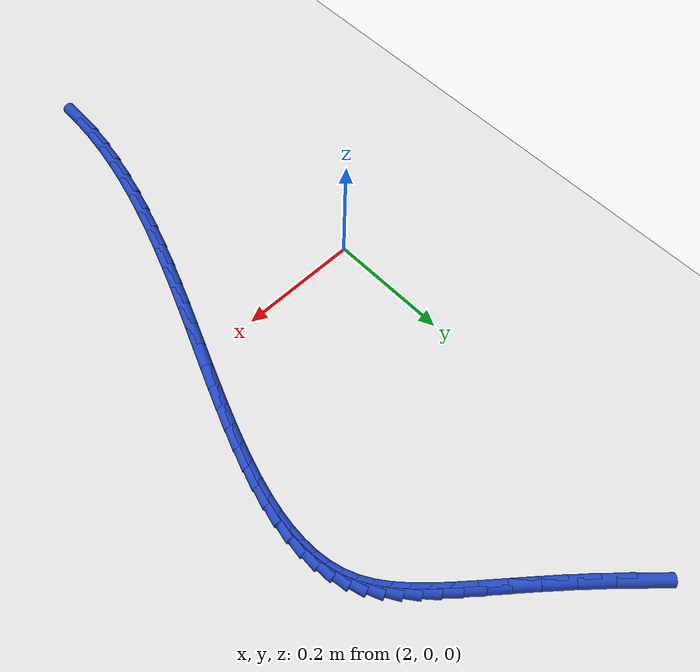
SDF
<sdf version="1.6">
 <world name="default">
  <model name="ground_plane">
   <static>1</static>
   <link name="link">
    <collision name="collision">
     <geometry><plane><normal>0 0 1</normal><size>100 100</size></plane></geometry>
     <surface><friction><ode><mu>100</mu><mu2>50</mu2></ode></friction></surface>
    </collision>
    <visual name="visual">
     <cast_shadows>0</cast_shadows>
     <geometry><plane><normal>0 0 1</normal><size>100 100</size></plane></geometry>
     <material>
      <script><uri>file://media/materials/scripts/gazebo.material</uri><name>Gazebo/WhiteGlow</name></script>
     </material>
    </visual>
   </link>
  </model>
  <model name="line">
   <link name="link_103">
    <pose>2.0911944101590705 0.6627033750504607 0.01 0 1.57 -0.7475670347152038</pose>
    <collision name="collision">
     <geometry><cylinder><radius>0.01</radius><length>0.08</length></cylinder></geometry>
    </collision>
    <visual name="visual">
     <material>
      <script><name>Gazebo/Blue</name><uri>file://media/materials/scripts/gazebo.material</uri></script>
     </material>
     <geometry><cylinder><radius>0.01</radius><length>0.08</length></cylinder></geometry>
    </visual>
   </link>
   <link name="link_104">
    <pose>2.1288737600473726 0.6277722717761682 0.01 0 1.57 -0.7252791392385805</pose>
    <collision name="collision">
     <geometry><cylinder><radius>0.01</radius><length>0.08</length></cylinder></geometry>
    </collision>
    <visual name="visual">
     <material>
      <script><name>Gazebo/Blue</name><uri>file://media/materials/scripts/gazebo.material</uri></script>
     </material>
     <geometry><cylinder><radius>0.01</radius><length>0.08</length></cylinder></geometry>
    </visual>
   </link>
   <link name="link_105">
    <pose>2.164173301611967 0.5964809387272672 0.01 0 1.57 -0.7075287315160101</pose>
    <collision name="collision">
     <geometry><cylinder><radius>0.01</radius><length>0.08</length></cylinder></geometry>
    </collision>
    <visual name="visual">
     <material>
      <script><name>Gazebo/Blue</name><uri>file://media/materials/scripts/gazebo.material</uri></script>
     </material>
     <geometry><cylinder><radius>0.01</radius><length>0.08</length></cylinder></geometry>
    </visual>
   </link>
   <link name="link_106">
    <pose>2.1970469853462378 0.568366024834345 0.01 0 1.57 -0.6960381041693734</pose>
    <collision name="collision">
     <geometry><cylinder><radius>0.01</radius><length>0.08</length></cylinder></geometry>
    </collision>
    <visual name="visual">
     <material>
      <script><name>Gazebo/Blue</name><uri>file://media/materials/scripts/gazebo.material</uri></script>
     </material>
     <geometry><cylinder><radius>0.01</radius><length>0.08</length></cylinder></geometry>
    </visual>
   </link>
   <link name="link_107">
    <pose>2.227448761743568 0.542964179027991 0.01 0 1.57 -0.6929495454557527</pose>
    <collision name="collision">
     <geometry><cylinder><radius>0.01</radius><length>0.08</length></cylinder></geometry>
    </collision>
    <visual name="visual">
     <material>
      <script><name>Gazebo/Blue</name><uri>file://media/materials/scripts/gazebo.material</uri></script>
     </material>
     <geometry><cylinder><radius>0.01</radius><length>0.08</length></cylinder></geometry>
    </visual>
   </link>
   <link name="link_108">
    <pose>2.2553325812973433 0.5198120502387933 0.01 0 1.57 -0.7009044792185395</pose>
    <collision name="collision">
     <geometry><cylinder><radius>0.01</radius><length>0.08</length></cylinder></geometry>
    </collision>
    <visual name="visual">
     <material>
      <script><name>Gazebo/Blue</name><uri>file://media/materials/scripts/gazebo.material</uri></script>
     </material>
     <geometry><cylinder><radius>0.01</radius><length>0.08</length></cylinder></geometry>
    </visual>
   </link>
   <link name="link_109">
    <pose>2.280652394500945 0.49844628739734104 0.01 0 1.57 -0.723096368605079</pose>
    <collision name="collision">
     <geometry><cylinder><radius>0.01</radius><length>0.08</length></cylinder></geometry>
    </collision>
    <visual name="visual">
     <material>
      <script><name>Gazebo/Blue</name><uri>file://media/materials/scripts/gazebo.material</uri></script>
     </material>
     <geometry><cylinder><radius>0.01</radius><length>0.08</length></cylinder></geometry>
    </visual>
   </link>
   <link name="link_110">
    <pose>2.3033621518477583 0.4784035394342226 0.01 0 1.57 -0.7632142332263752</pose>
    <collision name="collision">
     <geometry><cylinder><radius>0.01</radius><length>0.08</length></cylinder></geometry>
    </collision>
    <visual name="visual">
     <material>
      <script><name>Gazebo/Blue</name><uri>file://media/materials/scripts/gazebo.material</uri></script>
     </material>
     <geometry><cylinder><radius>0.01</radius><length>0.08</length></cylinder></geometry>
    </visual>
   </link>
   <link name="link_111">
    <pose>2.323415803831165 0.45922045528002664 0.01 0 1.57 -0.8250934896420186</pose>
    <collision name="collision">
     <geometry><cylinder><radius>0.01</radius><length>0.08</length></cylinder></geometry>
    </collision>
    <visual name="visual">
     <material>
      <script><name>Gazebo/Blue</name><uri>file://media/materials/scripts/gazebo.material</uri></script>
     </material>
     <geometry><cylinder><radius>0.01</radius><length>0.08</length></cylinder></geometry>
    </visual>
   </link>
   <link name="link_112">
    <pose>2.3407673009445507 0.44043368386534165 0.01 0 1.57 -0.9117649934822509</pose>
    <collision name="collision">
     <geometry><cylinder><radius>0.01</radius><length>0.08</length></cylinder></geometry>
    </collision>
    <visual name="visual">
     <material>
      <script><name>Gazebo/Blue</name><uri>file://media/materials/scripts/gazebo.material</uri></script>
     </material>
     <geometry><cylinder><radius>0.01</radius><length>0.08</length></cylinder></geometry>
    </visual>
   </link>
   <link name="link_113">
    <pose>2.3553705936812968 0.4215798741207563 0.01 0 1.57 -1.0236326177306176</pose>
    <collision name="collision">
     <geometry><cylinder><radius>0.01</radius><length>0.08</length></cylinder></geometry>
    </collision>
    <visual name="visual">
     <material>
      <script><name>Gazebo/Blue</name><uri>file://media/materials/scripts/gazebo.material</uri></script>
     </material>
     <geometry><cylinder><radius>0.01</radius><length>0.08</length></cylinder></geometry>
    </visual>
   </link>
   <link name="link_114">
    <pose>2.367179632534789 0.4021956749768595 0.01 0 1.57 -1.1560301037022522</pose>
    <collision name="collision">
     <geometry><cylinder><radius>0.01</radius><length>0.08</length></cylinder></geometry>
    </collision>
    <visual name="visual">
     <material>
      <script><name>Gazebo/Blue</name><uri>file://media/materials/scripts/gazebo.material</uri></script>
     </material>
     <geometry><cylinder><radius>0.01</radius><length>0.08</length></cylinder></geometry>
    </visual>
   </link>
   <link name="link_115">
    <pose>2.376150316931169 0.3818220911975508 0.01 0 1.57 -1.2925001556741005</pose>
    <collision name="collision">
     <geometry><cylinder><radius>0.01</radius><length>0.08</length></cylinder></geometry>
    </collision>
    <visual name="visual">
     <material>
      <script><name>Gazebo/Blue</name><uri>file://media/materials/scripts/gazebo.material</uri></script>
     </material>
     <geometry><cylinder><radius>0.01</radius><length>0.08</length></cylinder></geometry>
    </visual>
   </link>
   <link name="link_116">
    <pose>2.3823279755576583 0.36020000050415063 0.01 0 1.57 -1.4164715834320636</pose>
    <collision name="collision">
     <geometry><cylinder><radius>0.01</radius><length>0.08</length></cylinder></geometry>
    </collision>
    <visual name="visual">
     <material>
      <script><name>Gazebo/Blue</name><uri>file://media/materials/scripts/gazebo.material</uri></script>
     </material>
     <geometry><cylinder><radius>0.01</radius><length>0.08</length></cylinder></geometry>
    </visual>
   </link>
   <link name="link_117">
    <pose>2.385882697074209 0.33734911714661603 0.01 0 1.57 -1.5246075416648541</pose>
    <collision name="collision">
     <geometry><cylinder><radius>0.01</radius><length>0.08</length></cylinder></geometry>
    </collision>
    <visual name="visual">
     <material>
      <script><name>Gazebo/Blue</name><uri>file://media/materials/scripts/gazebo.material</uri></script>
     </material>
     <geometry><cylinder><radius>0.01</radius><length>0.08</length></cylinder></geometry>
    </visual>
   </link>
   <link name="link_118">
    <pose>2.38699383167791 0.3133098547611579 0.01 0 1.57 1.5250470474221944</pose>
    <collision name="collision">
     <geometry><cylinder><radius>0.01</radius><length>0.08</length></cylinder></geometry>
    </collision>
    <visual name="visual">
     <material>
      <script><name>Gazebo/Blue</name><uri>file://media/materials/scripts/gazebo.material</uri></script>
     </material>
     <geometry><cylinder><radius>0.01</radius><length>0.08</length></cylinder></geometry>
    </visual>
   </link>
   <link name="link_119">
    <pose>2.3858407295658486 0.2881226269839866 0.01 0 1.57 1.4482712805567977</pose>
    <collision name="collision">
     <geometry><cylinder><radius>0.01</radius><length>0.08</length></cylinder></geometry>
    </collision>
    <visual name="visual">
     <material>
      <script><name>Gazebo/Blue</name><uri>file://media/materials/scripts/gazebo.material</uri></script>
     </material>
     <geometry><cylinder><radius>0.01</radius><length>0.08</length></cylinder></geometry>
    </visual>
   </link>
   <link name="link_120">
    <pose>2.3826027409351123 0.2618278474513138 0.01 0 1.57 1.3849836010131775</pose>
    <collision name="collision">
     <geometry><cylinder><radius>0.01</radius><length>0.08</length></cylinder></geometry>
    </collision>
    <visual name="visual">
     <material>
      <script><name>Gazebo/Blue</name><uri>file://media/materials/scripts/gazebo.material</uri></script>
     </material>
     <geometry><cylinder><radius>0.01</radius><length>0.08</length></cylinder></geometry>
    </visual>
   </link>
   <link name="link_121">
    <pose>2.37745921598279 0.23446592979934996 0.01 0 1.57 1.3333724567854408</pose>
    <collision name="collision">
     <geometry><cylinder><radius>0.01</radius><length>0.08</length></cylinder></geometry>
    </collision>
    <visual name="visual">
     <material>
      <script><name>Gazebo/Blue</name><uri>file://media/materials/scripts/gazebo.material</uri></script>
     </material>
     <geometry><cylinder><radius>0.01</radius><length>0.08</length></cylinder></geometry>
    </visual>
   </link>
   <link name="link_122">
    <pose>2.3705895049059684 0.20607728766430594 0.01 0 1.57 1.2917508047037802</pose>
    <collision name="collision">
     <geometry><cylinder><radius>0.01</radius><length>0.08</length></cylinder></geometry>
    </collision>
    <visual name="visual">
     <material>
      <script><name>Gazebo/Blue</name><uri>file://media/materials/scripts/gazebo.material</uri></script>
     </material>
     <geometry><cylinder><radius>0.01</radius><length>0.08</length></cylinder></geometry>
    </visual>
   </link>
   <link name="link_123">
    <pose>2.3621729579017376 0.17670233468239266 0.01 0 1.57 1.2586612065007912</pose>
    <collision name="collision">
     <geometry><cylinder><radius>0.01</radius><length>0.08</length></cylinder></geometry>
    </collision>
    <visual name="visual">
     <material>
      <script><name>Gazebo/Blue</name><uri>file://media/materials/scripts/gazebo.material</uri></script>
     </material>
     <geometry><cylinder><radius>0.01</radius><length>0.08</length></cylinder></geometry>
    </visual>
   </link>
   <link name="link_124">
    <pose>2.3523889251671832 0.14638148448982088 0.01 0 1.57 1.2328966542190463</pose>
    <collision name="collision">
     <geometry><cylinder><radius>0.01</radius><length>0.08</length></cylinder></geometry>
    </collision>
    <visual name="visual">
     <material>
      <script><name>Gazebo/Blue</name><uri>file://media/materials/scripts/gazebo.material</uri></script>
     </material>
     <geometry><cylinder><radius>0.01</radius><length>0.08</length></cylinder></geometry>
    </visual>
   </link>
   <link name="link_125">
    <pose>2.3414167568993944 0.11515515072280068 0.01 0 1.57 1.213483188967827</pose>
    <collision name="collision">
     <geometry><cylinder><radius>0.01</radius><length>0.08</length></cylinder></geometry>
    </collision>
    <visual name="visual">
     <material>
      <script><name>Gazebo/Blue</name><uri>file://media/materials/scripts/gazebo.material</uri></script>
     </material>
     <geometry><cylinder><radius>0.01</radius><length>0.08</length></cylinder></geometry>
    </visual>
   </link>
   <link name="link_126">
    <pose>2.329435803295459 0.08306374701754454 0.01 0 1.57 1.1996491202237294</pose>
    <collision name="collision">
     <geometry><cylinder><radius>0.01</radius><length>0.08</length></cylinder></geometry>
    </collision>
    <visual name="visual">
     <material>
      <script><name>Gazebo/Blue</name><uri>file://media/materials/scripts/gazebo.material</uri></script>
     </material>
     <geometry><cylinder><radius>0.01</radius><length>0.08</length></cylinder></geometry>
    </visual>
   </link>
   <link name="link_127">
    <pose>2.3166254145524636 0.050147687010262496 0.01 0 1.57 1.1907926396636406</pose>
    <collision name="collision">
     <geometry><cylinder><radius>0.01</radius><length>0.08</length></cylinder></geometry>
    </collision>
    <visual name="visual">
     <material>
      <script><name>Gazebo/Blue</name><uri>file://media/materials/scripts/gazebo.material</uri></script>
     </material>
     <geometry><cylinder><radius>0.01</radius><length>0.08</length></cylinder></geometry>
    </visual>
   </link>
   <link name="link_128">
    <pose>2.303164940867499 0.016447384337165367 0.01 0 1.57 1.1864526687232881</pose>
    <collision name="collision">
     <geometry><cylinder><radius>0.01</radius><length>0.08</length></cylinder></geometry>
    </collision>
    <visual name="visual">
     <material>
      <script><name>Gazebo/Blue</name><uri>file://media/materials/scripts/gazebo.material</uri></script>
     </material>
     <geometry><cylinder><radius>0.01</radius><length>0.08</length></cylinder></geometry>
    </visual>
   </link>
   <link name="link_129">
    <pose>2.2892337324376495 -0.017996747365535935 0.01 0 1.57 1.1862843927232618</pose>
    <collision name="collision">
     <geometry><cylinder><radius>0.01</radius><length>0.08</length></cylinder></geometry>
    </collision>
    <visual name="visual">
     <material>
      <script><name>Gazebo/Blue</name><uri>file://media/materials/scripts/gazebo.material</uri></script>
     </material>
     <geometry><cylinder><radius>0.01</radius><length>0.08</length></cylinder></geometry>
    </visual>
   </link>
   <link name="link_130">
    <pose>2.2750111394600054 -0.05314429446163063 0.01 0 1.57 1.1900394276656847</pose>
    <collision name="collision">
     <geometry><cylinder><radius>0.01</radius><length>0.08</length></cylinder></geometry>
    </collision>
    <visual name="visual">
     <material>
      <script><name>Gazebo/Blue</name><uri>file://media/materials/scripts/gazebo.material</uri></script>
     </material>
     <geometry><cylinder><radius>0.01</radius><length>0.08</length></cylinder></geometry>
    </visual>
   </link>
   <link name="link_131">
    <pose>2.260676512131654 -0.08895484331490777 0.01 0 1.57 1.197549975442255</pose>
    <collision name="collision">
     <geometry><cylinder><radius>0.01</radius><length>0.08</length></cylinder></geometry>
    </collision>
    <visual name="visual">
     <material>
      <script><name>Gazebo/Blue</name><uri>file://media/materials/scripts/gazebo.material</uri></script>
     </material>
     <geometry><cylinder><radius>0.01</radius><length>0.08</length></cylinder></geometry>
    </visual>
   </link>
   <link name="link_132">
    <pose>2.2464092006496834 -0.12538798028915754 0.01 0 1.57 1.2087161456417936</pose>
    <collision name="collision">
     <geometry><cylinder><radius>0.01</radius><length>0.08</length></cylinder></geometry>
    </collision>
    <visual name="visual">
     <material>
      <script><name>Gazebo/Blue</name><uri>file://media/materials/scripts/gazebo.material</uri></script>
     </material>
     <geometry><cylinder><radius>0.01</radius><length>0.08</length></cylinder></geometry>
    </visual>
   </link>
   <link name="link_133">
    <pose>2.2323885552111817 -0.16240329174816717 0.01 0 1.57 1.2234956082951418</pose>
    <collision name="collision">
     <geometry><cylinder><radius>0.01</radius><length>0.08</length></cylinder></geometry>
    </collision>
    <visual name="visual">
     <material>
      <script><name>Gazebo/Blue</name><uri>file://media/materials/scripts/gazebo.material</uri></script>
     </material>
     <geometry><cylinder><radius>0.01</radius><length>0.08</length></cylinder></geometry>
    </visual>
   </link>
   <link name="link_134">
    <pose>2.2187939260132366 -0.1999603640557267 0.01 0 1.57 1.241894774220605</pose>
    <collision name="collision">
     <geometry><cylinder><radius>0.01</radius><length>0.08</length></cylinder></geometry>
    </collision>
    <visual name="visual">
     <material>
      <script><name>Gazebo/Blue</name><uri>file://media/materials/scripts/gazebo.material</uri></script>
     </material>
     <geometry><cylinder><radius>0.01</radius><length>0.08</length></cylinder></geometry>
    </visual>
   </link>
   <link name="link_135">
    <pose>2.2058046632529362 -0.23801878357562534 0.01 0 1.57 1.2639607265711807</pose>
    <collision name="collision">
     <geometry><cylinder><radius>0.01</radius><length>0.08</length></cylinder></geometry>
    </collision>
    <visual name="visual">
     <material>
      <script><name>Gazebo/Blue</name><uri>file://media/materials/scripts/gazebo.material</uri></script>
     </material>
     <geometry><cylinder><radius>0.01</radius><length>0.08</length></cylinder></geometry>
    </visual>
   </link>
   <link name="link_136">
    <pose>2.193600117127368 -0.2765381366716523 0.01 0 1.57 1.2897731308577134</pose>
    <collision name="collision">
     <geometry><cylinder><radius>0.01</radius><length>0.08</length></cylinder></geometry>
    </collision>
    <visual name="visual">
     <material>
      <script><name>Gazebo/Blue</name><uri>file://media/materials/scripts/gazebo.material</uri></script>
     </material>
     <geometry><cylinder><radius>0.01</radius><length>0.08</length></cylinder></geometry>
    </visual>
   </link>
   <link name="link_137">
    <pose>2.182359637833619 -0.3154780097075965 0.01 0 1.57 1.3194353330927304</pose>
    <collision name="collision">
     <geometry><cylinder><radius>0.01</radius><length>0.08</length></cylinder></geometry>
    </collision>
    <visual name="visual">
     <material>
      <script><name>Gazebo/Blue</name><uri>file://media/materials/scripts/gazebo.material</uri></script>
     </material>
     <geometry><cylinder><radius>0.01</radius><length>0.08</length></cylinder></geometry>
    </visual>
   </link>
   <link name="link_138">
    <pose>2.172262575568779 -0.3547979890472472 0.01 0 1.57 1.3530638348899946</pose>
    <collision name="collision">
     <geometry><cylinder><radius>0.01</radius><length>0.08</length></cylinder></geometry>
    </collision>
    <visual name="visual">
     <material>
      <script><name>Gazebo/Blue</name><uri>file://media/materials/scripts/gazebo.material</uri></script>
     </material>
     <geometry><cylinder><radius>0.01</radius><length>0.08</length></cylinder></geometry>
    </visual>
   </link>
   <link name="link_139">
    <pose>2.1634882805299354 -0.39445766105439367 0.01 0 1.57 1.3907753464940447</pose>
    <collision name="collision">
     <geometry><cylinder><radius>0.01</radius><length>0.08</length></cylinder></geometry>
    </collision>
    <visual name="visual">
     <material>
      <script><name>Gazebo/Blue</name><uri>file://media/materials/scripts/gazebo.material</uri></script>
     </material>
     <geometry><cylinder><radius>0.01</radius><length>0.08</length></cylinder></geometry>
    </visual>
   </link>
   <link name="link_140">
    <pose>2.1562161029141755 -0.4344166120928261 0.01 0 1.57 1.432670721705156</pose>
    <collision name="collision">
     <geometry><cylinder><radius>0.01</radius><length>0.08</length></cylinder></geometry>
    </collision>
    <visual name="visual">
     <material>
      <script><name>Gazebo/Blue</name><uri>file://media/materials/scripts/gazebo.material</uri></script>
     </material>
     <geometry><cylinder><radius>0.01</radius><length>0.08</length></cylinder></geometry>
    </visual>
   </link>
   <link name="link_141">
    <pose>2.150625392918588 -0.47463442852633136 0.01 0 1.57 1.4788153530359367</pose>
    <collision name="collision">
     <geometry><cylinder><radius>0.01</radius><length>0.08</length></cylinder></geometry>
    </collision>
    <visual name="visual">
     <material>
      <script><name>Gazebo/Blue</name><uri>file://media/materials/scripts/gazebo.material</uri></script>
     </material>
     <geometry><cylinder><radius>0.01</radius><length>0.08</length></cylinder></geometry>
    </visual>
   </link>
   <link name="link_142">
    <pose>2.1468955007402597 -0.5150706967186998 0.01 0 1.57 1.5292083384306907</pose>
    <collision name="collision">
     <geometry><cylinder><radius>0.01</radius><length>0.08</length></cylinder></geometry>
    </collision>
    <visual name="visual">
     <material>
      <script><name>Gazebo/Blue</name><uri>file://media/materials/scripts/gazebo.material</uri></script>
     </material>
     <geometry><cylinder><radius>0.01</radius><length>0.08</length></cylinder></geometry>
    </visual>
   </link>
  </model>
 </world>
</sdf>
